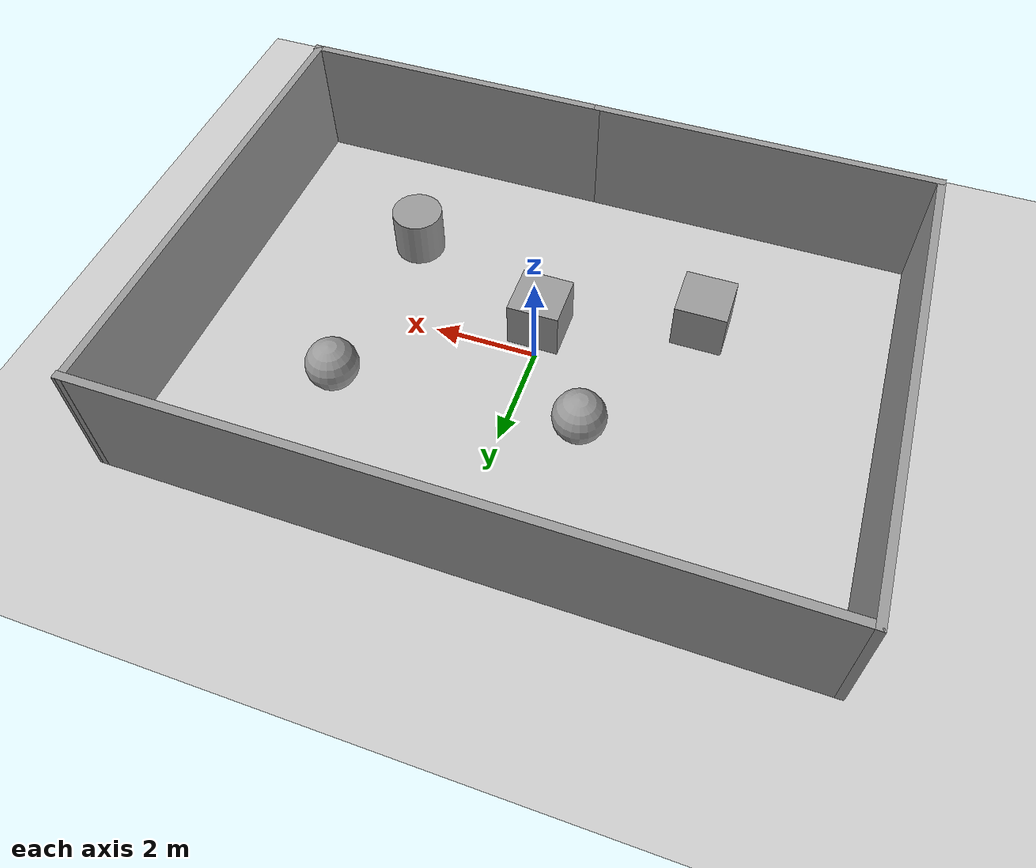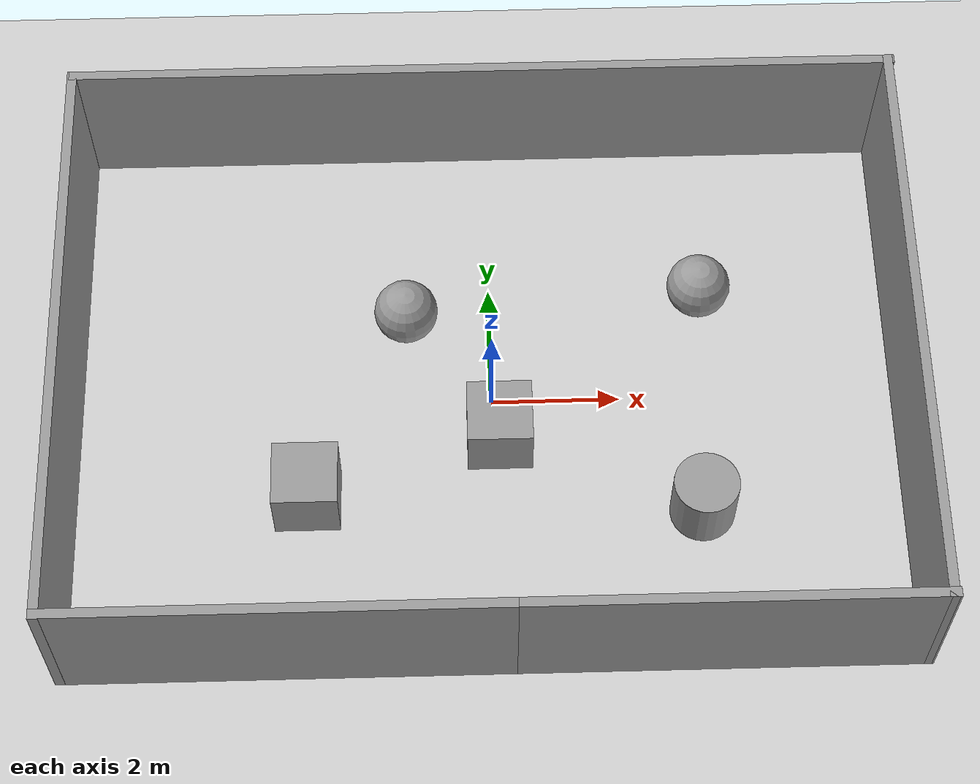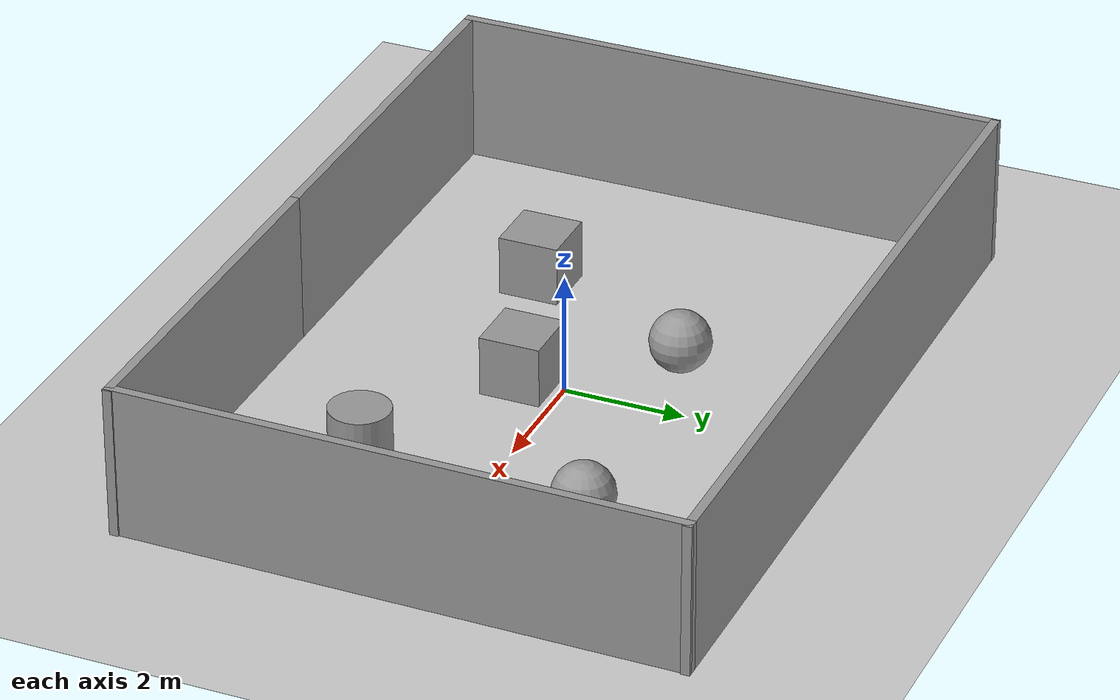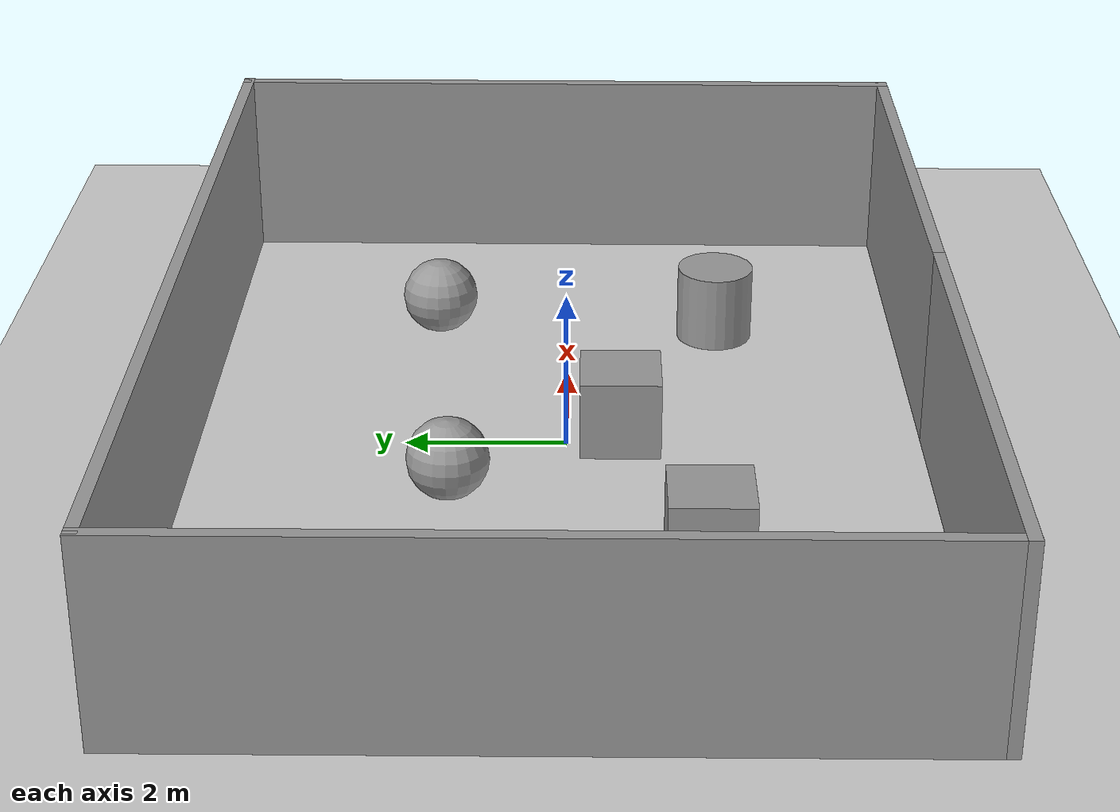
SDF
<sdf version="1.7">
 <world name="default">
  <light name="sun" type="directional">
   <pose>0 0 10 0 -0 0</pose>
   <diffuse>0.8 0.8 0.8 1</diffuse>
   <specular>0.2 0.2 0.2 1</specular>
   <attenuation>
    <range>1000</range>
    <constant>0.9</constant>
    <linear>0.01</linear>
    <quadratic>0.001</quadratic>
   </attenuation>
   <direction>-0.5 0.1 -0.9</direction>
   <spot><inner_angle>0</inner_angle><outer_angle>0</outer_angle><falloff>0</falloff></spot>
  </light>
  <model name="ground_plane">
   <static>1</static>
   <link name="link">
    <collision name="collision">
     <geometry><plane><normal>0 0 1</normal><size>100 100</size></plane></geometry>
     <surface><friction><ode><mu>100</mu><mu2>50</mu2></ode></friction></surface>
    </collision>
    <visual name="visual">
     <cast_shadows>0</cast_shadows>
     <geometry><plane><normal>0 0 1</normal><size>100 100</size></plane></geometry>
     <material>
      <script><uri>file://media/materials/scripts/gazebo.material</uri><name>Gazebo/Grey</name></script>
     </material>
    </visual>
   </link>
  </model>
  <gravity>0 0 -9.8</gravity>
  <magnetic_field>6e-06 2.3e-05 -4.2e-05</magnetic_field>
  <atmosphere type="adiabatic"/>
  <physics type="ode">
   <max_step_size>0.001</max_step_size>
   <real_time_factor>1</real_time_factor>
   <real_time_update_rate>1000</real_time_update_rate>
  </physics>
  <scene><ambient>0.4 0.4 0.4 1</ambient><background>0.7 0.7 0.7 1</background><shadows>1</shadows></scene>
  <audio><device>default</device></audio>
  <spherical_coordinates>
   <surface_model>EARTH_WGS84</surface_model>
   <latitude_deg>0</latitude_deg>
   <longitude_deg>0</longitude_deg>
   <elevation>0</elevation>
   <heading_deg>0</heading_deg>
  </spherical_coordinates>
  <model name="Wall">
   <pose>-0.037219 0.085334 0 0 -0 0</pose>
   <link name="Wall_1">
    <collision name="Wall_1_Collision">
     <geometry><box><size>6.8118 0.15 2.5</size></box></geometry>
     <pose>0 0 1.25 0 -0 0</pose>
    </collision>
    <visual name="Wall_1_Visual">
     <pose>0 0 1.25 0 -0 0</pose>
     <geometry><box><size>6.8118 0.15 2.5</size></box></geometry>
     <material>
      <script><uri>file://media/materials/scripts/gazebo.material</uri><name>Gazebo/Grey</name></script>
      <ambient>0 0 0 1</ambient>
     </material>
     <meta><layer>0</layer></meta>
    </visual>
    <pose>-3.1074 -4.5633 0 0 -0 0</pose>
   </link>
   <link name="Wall_5">
    <collision name="Wall_5_Collision">
     <geometry><box><size>9.27757 0.15 2.5</size></box></geometry>
     <pose>0 0 1.25 0 -0 0</pose>
    </collision>
    <visual name="Wall_5_Visual">
     <pose>0 0 1.25 0 -0 0</pose>
     <geometry><box><size>9.27757 0.15 2.5</size></box></geometry>
     <material>
      <script><uri>file://media/materials/scripts/gazebo.material</uri><name>Gazebo/Grey</name></script>
      <ambient>0 0 0 1</ambient>
     </material>
     <meta><layer>0</layer></meta>
    </visual>
    <pose>-6.4383 0 0 0 -0 1.5708</pose>
   </link>
   <link name="Wall_6">
    <collision name="Wall_6_Collision">
     <geometry><box><size>13 0.15 2.5</size></box></geometry>
     <pose>0 0 1.25 0 -0 0</pose>
    </collision>
    <visual name="Wall_6_Visual">
     <pose>0 0 1.25 0 -0 0</pose>
     <geometry><box><size>13 0.15 2.5</size></box></geometry>
     <material>
      <script><uri>file://media/materials/scripts/gazebo.material</uri><name>Gazebo/Grey</name></script>
      <ambient>0 0 0 1</ambient>
     </material>
     <meta><layer>0</layer></meta>
    </visual>
    <pose>0.0133 4.5633 0 0 -0 0</pose>
   </link>
   <link name="Wall_7">
    <collision name="Wall_7_Collision">
     <geometry><box><size>9.27722 0.15 2.5</size></box></geometry>
     <pose>0 0 1.25 0 -0 0</pose>
    </collision>
    <visual name="Wall_7_Visual">
     <pose>0 0 1.25 0 -0 0</pose>
     <geometry><box><size>9.27722 0.15 2.5</size></box></geometry>
     <material>
      <script><uri>file://media/materials/scripts/gazebo.material</uri><name>Gazebo/Grey</name></script>
      <ambient>0 0 0 1</ambient>
     </material>
     <meta><layer>0</layer></meta>
    </visual>
    <pose>6.3851 0 0 0 -0 -1.57662</pose>
   </link>
   <link name="Wall_8">
    <collision name="Wall_8_Collision">
     <geometry><box><size>6.285 0.15 2.5</size></box></geometry>
     <pose>0 0 1.25 0 -0 0</pose>
    </collision>
    <visual name="Wall_8_Visual">
     <pose>0 0 1.25 0 -0 0</pose>
     <geometry><box><size>6.285 0.15 2.5</size></box></geometry>
     <material>
      <script><uri>file://media/materials/scripts/gazebo.material</uri><name>Gazebo/Grey</name></script>
      <ambient>0 0 0 1</ambient>
     </material>
     <meta><layer>0</layer></meta>
    </visual>
    <pose>3.3176 -4.5633 0 0 -0 3.14159</pose>
   </link>
   <static>1</static>
  </model>
  <model name="Model2">
   <link name="link_1">
    <inertial>
     <mass>1</mass>
     <inertia><ixx>0.145833</ixx><ixy>0</ixy><ixz>0</ixz><iyy>0.145833</iyy><iyz>0</iyz><izz>0.125</izz></inertia>
    </inertial>
    <pose>2.68623 -1.74741 0 0 -0 0</pose>
    <visual name="visual">
     <geometry><cylinder><radius>0.5</radius><length>1</length></cylinder></geometry>
     <material>
      <lighting>1</lighting>
      <script><uri>file://media/materials/scripts/gazebo.material</uri><name>Gazebo/Grey</name></script>
      <shader type="pixel"/>
     </material>
    </visual>
    <collision name="collision">
     <geometry><cylinder><radius>0.5</radius><length>1</length></cylinder></geometry>
     <surface>
      <friction>
       <ode><mu>1</mu><mu2>1</mu2><fdir1>0 0 0</fdir1><slip1>0</slip1><slip2>0</slip2></ode>
       <torsional>
        <coefficient>1</coefficient>
        <patch_radius>0</patch_radius>
        <surface_radius>0</surface_radius>
        <use_patch_radius>1</use_patch_radius>
        <ode><slip>0</slip></ode>
       </torsional>
      </friction>
      <bounce><restitution_coefficient>0</restitution_coefficient><threshold>1e+06</threshold></bounce>
      <contact>
       <collide_without_contact>0</collide_without_contact>
       <collide_without_contact_bitmask>1</collide_without_contact_bitmask>
       <collide_bitmask>1</collide_bitmask>
       <ode>
        <soft_cfm>0</soft_cfm>
        <soft_erp>0.2</soft_erp>
        <kp>1e+13</kp>
        <kd>1</kd>
        <max_vel>0.01</max_vel>
        <min_depth>0</min_depth>
       </ode>
       <bullet>
        <split_impulse>1</split_impulse>
        <split_impulse_penetration_threshold>-0.01</split_impulse_penetration_threshold>
        <soft_cfm>0</soft_cfm>
        <soft_erp>0.2</soft_erp>
        <kp>1e+13</kp>
        <kd>1</kd>
       </bullet>
      </contact>
     </surface>
    </collision>
   </link>
   <link name="link_2">
    <inertial>
     <mass>1</mass>
     <inertia><ixx>0.1</ixx><ixy>0</ixy><ixz>0</ixz><iyy>0.1</iyy><iyz>0</iyz><izz>0.1</izz></inertia>
    </inertial>
    <pose>2.84293 1.97429 0 0 -0 0</pose>
    <visual name="visual">
     <geometry><sphere><radius>0.5</radius></sphere></geometry>
     <material>
      <lighting>1</lighting>
      <script><uri>file://media/materials/scripts/gazebo.material</uri><name>Gazebo/Grey</name></script>
      <shader type="pixel"/>
     </material>
    </visual>
    <collision name="collision">
     <geometry><sphere><radius>0.5</radius></sphere></geometry>
     <surface>
      <friction>
       <ode><mu>1</mu><mu2>1</mu2><fdir1>0 0 0</fdir1><slip1>0</slip1><slip2>0</slip2></ode>
       <torsional>
        <coefficient>1</coefficient>
        <patch_radius>0</patch_radius>
        <surface_radius>0</surface_radius>
        <use_patch_radius>1</use_patch_radius>
        <ode><slip>0</slip></ode>
       </torsional>
      </friction>
      <bounce><restitution_coefficient>0</restitution_coefficient><threshold>1e+06</threshold></bounce>
      <contact>
       <collide_without_contact>0</collide_without_contact>
       <collide_without_contact_bitmask>1</collide_without_contact_bitmask>
       <collide_bitmask>1</collide_bitmask>
       <ode>
        <soft_cfm>0</soft_cfm>
        <soft_erp>0.2</soft_erp>
        <kp>1e+13</kp>
        <kd>1</kd>
        <max_vel>0.01</max_vel>
        <min_depth>0</min_depth>
       </ode>
       <bullet>
        <split_impulse>1</split_impulse>
        <split_impulse_penetration_threshold>-0.01</split_impulse_penetration_threshold>
        <soft_cfm>0</soft_cfm>
        <soft_erp>0.2</soft_erp>
        <kp>1e+13</kp>
        <kd>1</kd>
       </bullet>
      </contact>
     </surface>
    </collision>
   </link>
   <link name="link_3">
    <inertial>
     <mass>1</mass>
     <inertia>
      <ixx>0.166667</ixx>
      <ixy>0</ixy>
      <ixz>0</ixz>
      <iyy>0.166667</iyy>
      <iyz>0</iyz>
      <izz>0.166667</izz>
     </inertia>
    </inertial>
    <pose>-0.38234 -0.436181 0 0 -0 0</pose>
    <visual name="visual">
     <geometry><box><size>1 1 1</size></box></geometry>
     <material>
      <lighting>1</lighting>
      <script><uri>file://media/materials/scripts/gazebo.material</uri><name>Gazebo/Grey</name></script>
      <shader type="pixel"/>
     </material>
    </visual>
    <collision name="collision">
     <geometry><box><size>1 1 1</size></box></geometry>
     <surface>
      <friction>
       <ode><mu>1</mu><mu2>1</mu2><fdir1>0 0 0</fdir1><slip1>0</slip1><slip2>0</slip2></ode>
       <torsional>
        <coefficient>1</coefficient>
        <patch_radius>0</patch_radius>
        <surface_radius>0</surface_radius>
        <use_patch_radius>1</use_patch_radius>
        <ode><slip>0</slip></ode>
       </torsional>
      </friction>
      <bounce><restitution_coefficient>0</restitution_coefficient><threshold>1e+06</threshold></bounce>
      <contact>
       <collide_without_contact>0</collide_without_contact>
       <collide_without_contact_bitmask>1</collide_without_contact_bitmask>
       <collide_bitmask>1</collide_bitmask>
       <ode>
        <soft_cfm>0</soft_cfm>
        <soft_erp>0.2</soft_erp>
        <kp>1e+13</kp>
        <kd>1</kd>
        <max_vel>0.01</max_vel>
        <min_depth>0</min_depth>
       </ode>
       <bullet>
        <split_impulse>1</split_impulse>
        <split_impulse_penetration_threshold>-0.01</split_impulse_penetration_threshold>
        <soft_cfm>0</soft_cfm>
        <soft_erp>0.2</soft_erp>
        <kp>1e+13</kp>
        <kd>1</kd>
       </bullet>
      </contact>
     </surface>
    </collision>
   </link>
   <link name="link_4">
    <inertial>
     <mass>1</mass>
     <inertia>
      <ixx>0.166667</ixx>
      <ixy>0</ixy>
      <ixz>0</ixz>
      <iyy>0.166667</iyy>
      <iyz>0</iyz>
      <izz>0.166667</izz>
     </inertia>
    </inertial>
    <pose>-3.34347 -1.41461 0 0 -0 0</pose>
    <visual name="visual">
     <geometry><box><size>1 1 1</size></box></geometry>
     <material>
      <lighting>1</lighting>
      <script><uri>file://media/materials/scripts/gazebo.material</uri><name>Gazebo/Grey</name></script>
      <shader type="pixel"/>
     </material>
    </visual>
    <collision name="collision">
     <geometry><box><size>1 1 1</size></box></geometry>
     <surface>
      <friction>
       <ode><mu>1</mu><mu2>1</mu2><fdir1>0 0 0</fdir1><slip1>0</slip1><slip2>0</slip2></ode>
       <torsional>
        <coefficient>1</coefficient>
        <patch_radius>0</patch_radius>
        <surface_radius>0</surface_radius>
        <use_patch_radius>1</use_patch_radius>
        <ode><slip>0</slip></ode>
       </torsional>
      </friction>
      <bounce><restitution_coefficient>0</restitution_coefficient><threshold>1e+06</threshold></bounce>
      <contact>
       <collide_without_contact>0</collide_without_contact>
       <collide_without_contact_bitmask>1</collide_without_contact_bitmask>
       <collide_bitmask>1</collide_bitmask>
       <ode>
        <soft_cfm>0</soft_cfm>
        <soft_erp>0.2</soft_erp>
        <kp>1e+13</kp>
        <kd>1</kd>
        <max_vel>0.01</max_vel>
        <min_depth>0</min_depth>
       </ode>
       <bullet>
        <split_impulse>1</split_impulse>
        <split_impulse_penetration_threshold>-0.01</split_impulse_penetration_threshold>
        <soft_cfm>0</soft_cfm>
        <soft_erp>0.2</soft_erp>
        <kp>1e+13</kp>
        <kd>1</kd>
       </bullet>
      </contact>
     </surface>
    </collision>
   </link>
   <link name="link_5">
    <inertial>
     <mass>1</mass>
     <inertia><ixx>0.1</ixx><ixy>0</ixy><ixz>0</ixz><iyy>0.1</iyy><iyz>0</iyz><izz>0.1</izz></inertia>
    </inertial>
    <pose>-1.80335 1.62391 0 0 -0 0</pose>
    <visual name="visual">
     <geometry><sphere><radius>0.5</radius></sphere></geometry>
     <material>
      <lighting>1</lighting>
      <script><uri>file://media/materials/scripts/gazebo.material</uri><name>Gazebo/Grey</name></script>
      <shader type="pixel"/>
     </material>
    </visual>
    <collision name="collision">
     <geometry><sphere><radius>0.5</radius></sphere></geometry>
     <surface>
      <friction>
       <ode><mu>1</mu><mu2>1</mu2><fdir1>0 0 0</fdir1><slip1>0</slip1><slip2>0</slip2></ode>
       <torsional>
        <coefficient>1</coefficient>
        <patch_radius>0</patch_radius>
        <surface_radius>0</surface_radius>
        <use_patch_radius>1</use_patch_radius>
        <ode><slip>0</slip></ode>
       </torsional>
      </friction>
      <bounce><restitution_coefficient>0</restitution_coefficient><threshold>1e+06</threshold></bounce>
      <contact>
       <collide_without_contact>0</collide_without_contact>
       <collide_without_contact_bitmask>1</collide_without_contact_bitmask>
       <collide_bitmask>1</collide_bitmask>
       <ode>
        <soft_cfm>0</soft_cfm>
        <soft_erp>0.2</soft_erp>
        <kp>1e+13</kp>
        <kd>1</kd>
        <max_vel>0.01</max_vel>
        <min_depth>0</min_depth>
       </ode>
       <bullet>
        <split_impulse>1</split_impulse>
        <split_impulse_penetration_threshold>-0.01</split_impulse_penetration_threshold>
        <soft_cfm>0</soft_cfm>
        <soft_erp>0.2</soft_erp>
        <kp>1e+13</kp>
        <kd>1</kd>
       </bullet>
      </contact>
     </surface>
    </collision>
   </link>
   <static>0</static>
   <pose>0.487817 -0.22934 0.5 0 -0 0</pose>
  </model>
 </world>
</sdf>
